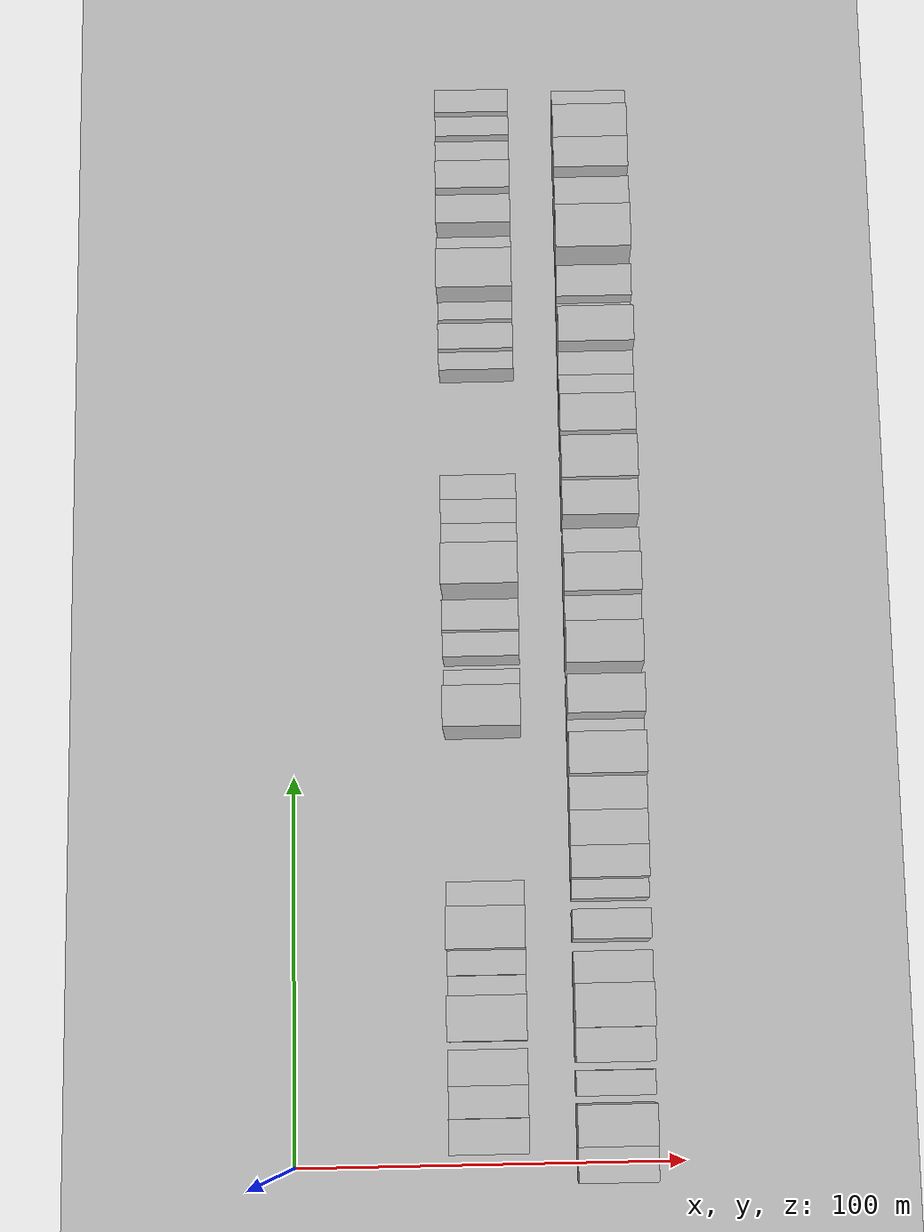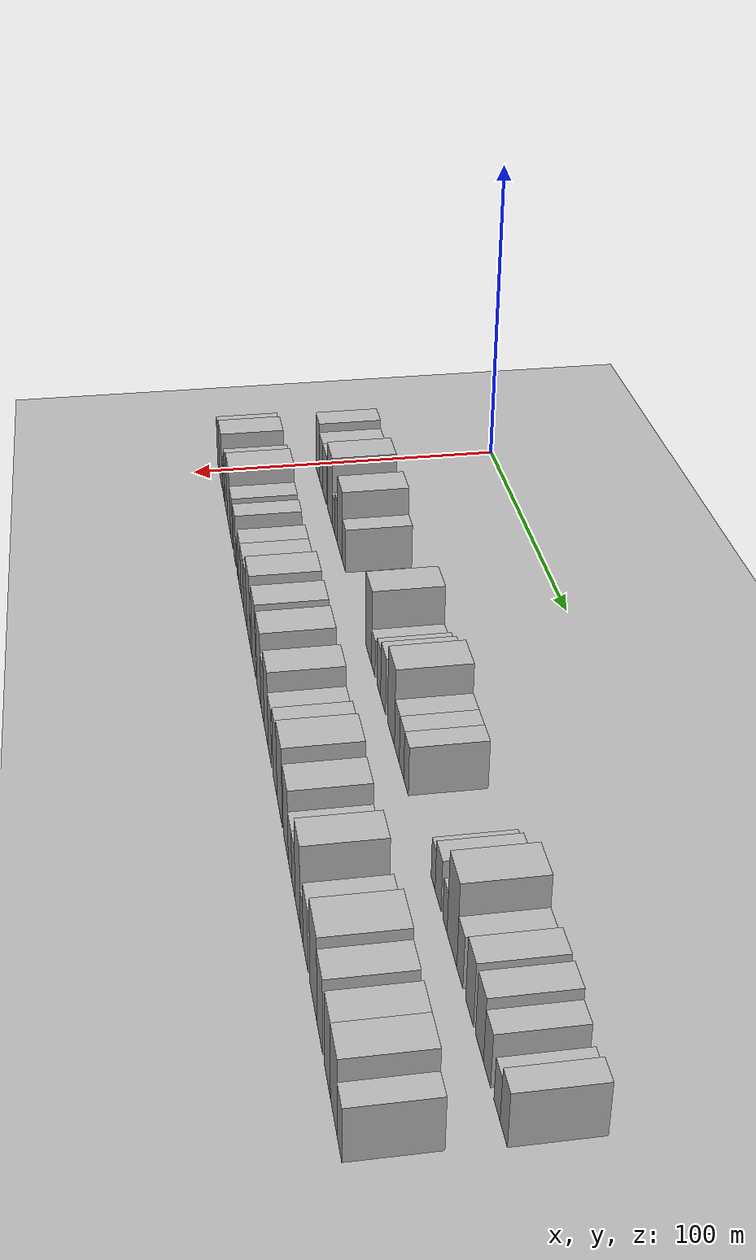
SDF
<sdf version="1.6">
 <world name="default">
  <include><name>ground_plane_1</name><uri>model://HANNAS_ground_plane</uri></include>
  <include>
   <name>ground_plane_2</name>
   <uri>model://HANNAS_ground_plane</uri>
   <pose>100 0 0  0 0 0</pose>
  </include>
  <model name="building_31">
   <static>1</static>
   <pose>50.0000 7.6886 0 0.000000 0.000000 0.000000</pose>
   <link name="link">
    <pose>0 0 10.50 0 0 0</pose>
    <collision name="collision"><geometry><box><size>20.0000 8.6175 21.0000</size></box></geometry></collision>
    <visual name="visual">
     <cast_shadows>0</cast_shadows>
     <geometry><box><size>20.0000 8.6175 21.0000</size></box></geometry>
     <material>
      <script>
       <uri>model://HANNAS_wall/materials/scripts</uri>
       <uri>model://HANNAS_wall/materials/textures</uri>
       <name>vrc/HANNAS_wall</name>
      </script>
     </material>
    </visual>
   </link>
  </model>
  <model name="building_32">
   <static>1</static>
   <pose>50.0000 15.9778 0 0.000000 0.000000 0.000000</pose>
   <link name="link">
    <pose>0 0 9.00 0 0 0</pose>
    <collision name="collision"><geometry><box><size>20.0000 7.9609 18.0000</size></box></geometry></collision>
    <visual name="visual">
     <cast_shadows>0</cast_shadows>
     <geometry><box><size>20.0000 7.9609 18.0000</size></box></geometry>
     <material>
      <script>
       <uri>model://HANNAS_wall/materials/scripts</uri>
       <uri>model://HANNAS_wall/materials/textures</uri>
       <name>vrc/HANNAS_wall</name>
      </script>
     </material>
    </visual>
   </link>
  </model>
  <model name="building_33">
   <static>1</static>
   <pose>50.0000 24.3910 0 0.000000 0.000000 0.000000</pose>
   <link name="link">
    <pose>0 0 9.00 0 0 0</pose>
    <collision name="collision"><geometry><box><size>20.0000 8.8656 18.0000</size></box></geometry></collision>
    <visual name="visual">
     <cast_shadows>0</cast_shadows>
     <geometry><box><size>20.0000 8.8656 18.0000</size></box></geometry>
     <material>
      <script>
       <uri>model://HANNAS_wall/materials/scripts</uri>
       <uri>model://HANNAS_wall/materials/textures</uri>
       <name>vrc/HANNAS_wall</name>
      </script>
     </material>
    </visual>
   </link>
  </model>
  <model name="building_34">
   <static>1</static>
   <pose>50.0000 36.4261 0 0.000000 0.000000 0.000000</pose>
   <link name="link">
    <pose>0 0 12.00 0 0 0</pose>
    <collision name="collision"><geometry><box><size>20.0000 11.2045 24.0000</size></box></geometry></collision>
    <visual name="visual">
     <cast_shadows>0</cast_shadows>
     <geometry><box><size>20.0000 11.2045 24.0000</size></box></geometry>
     <material>
      <script>
       <uri>model://HANNAS_wall/materials/scripts</uri>
       <uri>model://HANNAS_wall/materials/textures</uri>
       <name>vrc/HANNAS_wall</name>
      </script>
     </material>
    </visual>
   </link>
  </model>
  <model name="building_35">
   <static>1</static>
   <pose>50.0000 44.6338 0 0.000000 0.000000 0.000000</pose>
   <link name="link">
    <pose>0 0 6.00 0 0 0</pose>
    <collision name="collision"><geometry><box><size>20.0000 5.2108 12.0000</size></box></geometry></collision>
    <visual name="visual">
     <cast_shadows>0</cast_shadows>
     <geometry><box><size>20.0000 5.2108 12.0000</size></box></geometry>
     <material>
      <script>
       <uri>model://HANNAS_wall/materials/scripts</uri>
       <uri>model://HANNAS_wall/materials/textures</uri>
       <name>vrc/HANNAS_wall</name>
      </script>
     </material>
    </visual>
   </link>
  </model>
  <model name="building_36">
   <static>1</static>
   <pose>50.0000 50.3678 0 0.000000 0.000000 0.000000</pose>
   <link name="link">
    <pose>0 0 7.50 0 0 0</pose>
    <collision name="collision"><geometry><box><size>20.0000 6.2572 15.0000</size></box></geometry></collision>
    <visual name="visual">
     <cast_shadows>0</cast_shadows>
     <geometry><box><size>20.0000 6.2572 15.0000</size></box></geometry>
     <material>
      <script>
       <uri>model://HANNAS_wall/materials/scripts</uri>
       <uri>model://HANNAS_wall/materials/textures</uri>
       <name>vrc/HANNAS_wall</name>
      </script>
     </material>
    </visual>
   </link>
  </model>
  <model name="building_37">
   <static>1</static>
   <pose>50.0000 58.8005 0 0.000000 0.000000 0.000000</pose>
   <link name="link">
    <pose>0 0 12.00 0 0 0</pose>
    <collision name="collision"><geometry><box><size>20.0000 10.6083 24.0000</size></box></geometry></collision>
    <visual name="visual">
     <cast_shadows>0</cast_shadows>
     <geometry><box><size>20.0000 10.6083 24.0000</size></box></geometry>
     <material>
      <script>
       <uri>model://HANNAS_wall/materials/scripts</uri>
       <uri>model://HANNAS_wall/materials/textures</uri>
       <name>vrc/HANNAS_wall</name>
      </script>
     </material>
    </visual>
   </link>
  </model>
  <model name="building_38">
   <static>1</static>
   <pose>50.0000 67.4824 0 0.000000 0.000000 0.000000</pose>
   <link name="link">
    <pose>0 0 7.50 0 0 0</pose>
    <collision name="collision"><geometry><box><size>20.0000 6.7556 15.0000</size></box></geometry></collision>
    <visual name="visual">
     <cast_shadows>0</cast_shadows>
     <geometry><box><size>20.0000 6.7556 15.0000</size></box></geometry>
     <material>
      <script>
       <uri>model://HANNAS_wall/materials/scripts</uri>
       <uri>model://HANNAS_wall/materials/textures</uri>
       <name>vrc/HANNAS_wall</name>
      </script>
     </material>
    </visual>
   </link>
  </model>
  <model name="building_39">
   <static>1</static>
   <pose>50.0000 114.7980 0 0.000000 0.000000 0.000000</pose>
   <link name="link">
    <pose>0 0 12.00 0 0 0</pose>
    <collision name="collision"><geometry><box><size>20.0000 10.6252 24.0000</size></box></geometry></collision>
    <visual name="visual">
     <cast_shadows>0</cast_shadows>
     <geometry><box><size>20.0000 10.6252 24.0000</size></box></geometry>
     <material>
      <script>
       <uri>model://HANNAS_wall/materials/scripts</uri>
       <uri>model://HANNAS_wall/materials/textures</uri>
       <name>vrc/HANNAS_wall</name>
      </script>
     </material>
    </visual>
   </link>
  </model>
  <model name="building_40">
   <static>1</static>
   <pose>50.0000 123.1017 0 0.000000 0.000000 0.000000</pose>
   <link name="link">
    <pose>0 0 6.00 0 0 0</pose>
    <collision name="collision"><geometry><box><size>20.0000 5.9823 12.0000</size></box></geometry></collision>
    <visual name="visual">
     <cast_shadows>0</cast_shadows>
     <geometry><box><size>20.0000 5.9823 12.0000</size></box></geometry>
     <material>
      <script>
       <uri>model://HANNAS_wall/materials/scripts</uri>
       <uri>model://HANNAS_wall/materials/textures</uri>
       <name>vrc/HANNAS_wall</name>
      </script>
     </material>
    </visual>
   </link>
  </model>
  <model name="building_41">
   <static>1</static>
   <pose>50.0000 132.2804 0 0.000000 0.000000 0.000000</pose>
   <link name="link">
    <pose>0 0 7.50 0 0 0</pose>
    <collision name="collision"><geometry><box><size>20.0000 6.3750 15.0000</size></box></geometry></collision>
    <visual name="visual">
     <cast_shadows>0</cast_shadows>
     <geometry><box><size>20.0000 6.3750 15.0000</size></box></geometry>
     <material>
      <script>
       <uri>model://HANNAS_wall/materials/scripts</uri>
       <uri>model://HANNAS_wall/materials/textures</uri>
       <name>vrc/HANNAS_wall</name>
      </script>
     </material>
    </visual>
   </link>
  </model>
  <model name="building_42">
   <static>1</static>
   <pose>50.0000 139.5028 0 0.000000 0.000000 0.000000</pose>
   <link name="link">
    <pose>0 0 9.00 0 0 0</pose>
    <collision name="collision"><geometry><box><size>20.0000 8.0697 18.0000</size></box></geometry></collision>
    <visual name="visual">
     <cast_shadows>0</cast_shadows>
     <geometry><box><size>20.0000 8.0697 18.0000</size></box></geometry>
     <material>
      <script>
       <uri>model://HANNAS_wall/materials/scripts</uri>
       <uri>model://HANNAS_wall/materials/textures</uri>
       <name>vrc/HANNAS_wall</name>
      </script>
     </material>
    </visual>
   </link>
  </model>
  <model name="building_43">
   <static>1</static>
   <pose>50.0000 151.9790 0 0.000000 0.000000 0.000000</pose>
   <link name="link">
    <pose>0 0 12.00 0 0 0</pose>
    <collision name="collision"><geometry><box><size>20.0000 10.8826 24.0000</size></box></geometry></collision>
    <visual name="visual">
     <cast_shadows>0</cast_shadows>
     <geometry><box><size>20.0000 10.8826 24.0000</size></box></geometry>
     <material>
      <script>
       <uri>model://HANNAS_wall/materials/scripts</uri>
       <uri>model://HANNAS_wall/materials/textures</uri>
       <name>vrc/HANNAS_wall</name>
      </script>
     </material>
    </visual>
   </link>
  </model>
  <model name="building_44">
   <static>1</static>
   <pose>50.0000 161.0031 0 0.000000 0.000000 0.000000</pose>
   <link name="link">
    <pose>0 0 7.50 0 0 0</pose>
    <collision name="collision"><geometry><box><size>20.0000 7.1656 15.0000</size></box></geometry></collision>
    <visual name="visual">
     <cast_shadows>0</cast_shadows>
     <geometry><box><size>20.0000 7.1656 15.0000</size></box></geometry>
     <material>
      <script>
       <uri>model://HANNAS_wall/materials/scripts</uri>
       <uri>model://HANNAS_wall/materials/textures</uri>
       <name>vrc/HANNAS_wall</name>
      </script>
     </material>
    </visual>
   </link>
  </model>
  <model name="building_45">
   <static>1</static>
   <pose>50.0000 167.8345 0 0.000000 0.000000 0.000000</pose>
   <link name="link">
    <pose>0 0 7.50 0 0 0</pose>
    <collision name="collision"><geometry><box><size>20.0000 6.4972 15.0000</size></box></geometry></collision>
    <visual name="visual">
     <cast_shadows>0</cast_shadows>
     <geometry><box><size>20.0000 6.4972 15.0000</size></box></geometry>
     <material>
      <script>
       <uri>model://HANNAS_wall/materials/scripts</uri>
       <uri>model://HANNAS_wall/materials/textures</uri>
       <name>vrc/HANNAS_wall</name>
      </script>
     </material>
    </visual>
   </link>
  </model>
  <model name="building_46">
   <static>1</static>
   <pose>50.0000 174.4010 0 0.000000 0.000000 0.000000</pose>
   <link name="link">
    <pose>0 0 7.50 0 0 0</pose>
    <collision name="collision"><geometry><box><size>20.0000 6.6358 15.0000</size></box></geometry></collision>
    <visual name="visual">
     <cast_shadows>0</cast_shadows>
     <geometry><box><size>20.0000 6.6358 15.0000</size></box></geometry>
     <material>
      <script>
       <uri>model://HANNAS_wall/materials/scripts</uri>
       <uri>model://HANNAS_wall/materials/textures</uri>
       <name>vrc/HANNAS_wall</name>
      </script>
     </material>
    </visual>
   </link>
  </model>
  <model name="building_47">
   <static>1</static>
   <pose>50.0000 210.0900 0 0.000000 0.000000 0.000000</pose>
   <link name="link">
    <pose>0 0 6.00 0 0 0</pose>
    <collision name="collision"><geometry><box><size>20.0000 4.9141 12.0000</size></box></geometry></collision>
    <visual name="visual">
     <cast_shadows>0</cast_shadows>
     <geometry><box><size>20.0000 4.9141 12.0000</size></box></geometry>
     <material>
      <script>
       <uri>model://HANNAS_wall/materials/scripts</uri>
       <uri>model://HANNAS_wall/materials/textures</uri>
       <name>vrc/HANNAS_wall</name>
      </script>
     </material>
    </visual>
   </link>
  </model>
  <model name="building_48">
   <static>1</static>
   <pose>50.0000 216.0819 0 0.000000 0.000000 0.000000</pose>
   <link name="link">
    <pose>0 0 7.50 0 0 0</pose>
    <collision name="collision"><geometry><box><size>20.0000 7.0696 15.0000</size></box></geometry></collision>
    <visual name="visual">
     <cast_shadows>0</cast_shadows>
     <geometry><box><size>20.0000 7.0696 15.0000</size></box></geometry>
     <material>
      <script>
       <uri>model://HANNAS_wall/materials/scripts</uri>
       <uri>model://HANNAS_wall/materials/textures</uri>
       <name>vrc/HANNAS_wall</name>
      </script>
     </material>
    </visual>
   </link>
  </model>
  <model name="building_49">
   <static>1</static>
   <pose>50.0000 224.1275 0 0.000000 0.000000 0.000000</pose>
   <link name="link">
    <pose>0 0 6.00 0 0 0</pose>
    <collision name="collision"><geometry><box><size>20.0000 5.0218 12.0000</size></box></geometry></collision>
    <visual name="visual">
     <cast_shadows>0</cast_shadows>
     <geometry><box><size>20.0000 5.0218 12.0000</size></box></geometry>
     <material>
      <script>
       <uri>model://HANNAS_wall/materials/scripts</uri>
       <uri>model://HANNAS_wall/materials/textures</uri>
       <name>vrc/HANNAS_wall</name>
      </script>
     </material>
    </visual>
   </link>
  </model>
  <model name="building_50">
   <static>1</static>
   <pose>50.0000 232.0344 0 0.000000 0.000000 0.000000</pose>
   <link name="link">
    <pose>0 0 12.00 0 0 0</pose>
    <collision name="collision"><geometry><box><size>20.0000 10.7920 24.0000</size></box></geometry></collision>
    <visual name="visual">
     <cast_shadows>0</cast_shadows>
     <geometry><box><size>20.0000 10.7920 24.0000</size></box></geometry>
     <material>
      <script>
       <uri>model://HANNAS_wall/materials/scripts</uri>
       <uri>model://HANNAS_wall/materials/textures</uri>
       <name>vrc/HANNAS_wall</name>
      </script>
     </material>
    </visual>
   </link>
  </model>
  <model name="building_51">
   <static>1</static>
   <pose>50.0000 240.6646 0 0.000000 0.000000 0.000000</pose>
   <link name="link">
    <pose>0 0 7.50 0 0 0</pose>
    <collision name="collision"><geometry><box><size>20.0000 6.4684 15.0000</size></box></geometry></collision>
    <visual name="visual">
     <cast_shadows>0</cast_shadows>
     <geometry><box><size>20.0000 6.4684 15.0000</size></box></geometry>
     <material>
      <script>
       <uri>model://HANNAS_wall/materials/scripts</uri>
       <uri>model://HANNAS_wall/materials/textures</uri>
       <name>vrc/HANNAS_wall</name>
      </script>
     </material>
    </visual>
   </link>
  </model>
  <model name="building_52">
   <static>1</static>
   <pose>50.0000 250.8795 0 0.000000 0.000000 0.000000</pose>
   <link name="link">
    <pose>0 0 9.00 0 0 0</pose>
    <collision name="collision"><geometry><box><size>20.0000 7.9615 18.0000</size></box></geometry></collision>
    <visual name="visual">
     <cast_shadows>0</cast_shadows>
     <geometry><box><size>20.0000 7.9615 18.0000</size></box></geometry>
     <material>
      <script>
       <uri>model://HANNAS_wall/materials/scripts</uri>
       <uri>model://HANNAS_wall/materials/textures</uri>
       <name>vrc/HANNAS_wall</name>
      </script>
     </material>
    </visual>
   </link>
  </model>
  <model name="building_53">
   <static>1</static>
   <pose>50.0000 260.7514 0 0.000000 0.000000 0.000000</pose>
   <link name="link">
    <pose>0 0 9.00 0 0 0</pose>
    <collision name="collision"><geometry><box><size>20.0000 7.7824 18.0000</size></box></geometry></collision>
    <visual name="visual">
     <cast_shadows>0</cast_shadows>
     <geometry><box><size>20.0000 7.7824 18.0000</size></box></geometry>
     <material>
      <script>
       <uri>model://HANNAS_wall/materials/scripts</uri>
       <uri>model://HANNAS_wall/materials/textures</uri>
       <name>vrc/HANNAS_wall</name>
      </script>
     </material>
    </visual>
   </link>
  </model>
  <model name="building_54">
   <static>1</static>
   <pose>50.0000 267.9946 0 0.000000 0.000000 0.000000</pose>
   <link name="link">
    <pose>0 0 7.50 0 0 0</pose>
    <collision name="collision"><geometry><box><size>20.0000 6.7040 15.0000</size></box></geometry></collision>
    <visual name="visual">
     <cast_shadows>0</cast_shadows>
     <geometry><box><size>20.0000 6.7040 15.0000</size></box></geometry>
     <material>
      <script>
       <uri>model://HANNAS_wall/materials/scripts</uri>
       <uri>model://HANNAS_wall/materials/textures</uri>
       <name>vrc/HANNAS_wall</name>
      </script>
     </material>
    </visual>
   </link>
  </model>
  <model name="building_55">
   <static>1</static>
   <pose>50.0000 277.1277 0 0.000000 0.000000 0.000000</pose>
   <link name="link">
    <pose>0 0 6.00 0 0 0</pose>
    <collision name="collision"><geometry><box><size>20.0000 5.5620 12.0000</size></box></geometry></collision>
    <visual name="visual">
     <cast_shadows>0</cast_shadows>
     <geometry><box><size>20.0000 5.5620 12.0000</size></box></geometry>
     <material>
      <script>
       <uri>model://HANNAS_wall/materials/scripts</uri>
       <uri>model://HANNAS_wall/materials/textures</uri>
       <name>vrc/HANNAS_wall</name>
      </script>
     </material>
    </visual>
   </link>
  </model>
  <model name="building_56">
   <static>1</static>
   <pose>50.0000 283.1235 0 0.000000 0.000000 0.000000</pose>
   <link name="link">
    <pose>0 0 7.50 0 0 0</pose>
    <collision name="collision"><geometry><box><size>20.0000 6.4297 15.0000</size></box></geometry></collision>
    <visual name="visual">
     <cast_shadows>0</cast_shadows>
     <geometry><box><size>20.0000 6.4297 15.0000</size></box></geometry>
     <material>
      <script>
       <uri>model://HANNAS_wall/materials/scripts</uri>
       <uri>model://HANNAS_wall/materials/textures</uri>
       <name>vrc/HANNAS_wall</name>
      </script>
     </material>
    </visual>
   </link>
  </model>
  <model name="building_85">
   <static>1</static>
   <pose>82.0000 0.1891 0 0.000000 0.000000 0.000000</pose>
   <link name="link">
    <pose>0 0 9.00 0 0 0</pose>
    <collision name="collision"><geometry><box><size>20.0000 8.8460 18.0000</size></box></geometry></collision>
    <visual name="visual">
     <cast_shadows>0</cast_shadows>
     <geometry><box><size>20.0000 8.8460 18.0000</size></box></geometry>
     <material>
      <script>
       <uri>model://HANNAS_wall/materials/scripts</uri>
       <uri>model://HANNAS_wall/materials/textures</uri>
       <name>vrc/HANNAS_wall</name>
      </script>
     </material>
    </visual>
   </link>
  </model>
  <model name="building_86">
   <static>1</static>
   <pose>82.0000 9.7222 0 0.000000 0.000000 0.000000</pose>
   <link name="link">
    <pose>0 0 10.50 0 0 0</pose>
    <collision name="collision"><geometry><box><size>20.0000 10.2203 21.0000</size></box></geometry></collision>
    <visual name="visual">
     <cast_shadows>0</cast_shadows>
     <geometry><box><size>20.0000 10.2203 21.0000</size></box></geometry>
     <material>
      <script>
       <uri>model://HANNAS_wall/materials/scripts</uri>
       <uri>model://HANNAS_wall/materials/textures</uri>
       <name>vrc/HANNAS_wall</name>
      </script>
     </material>
    </visual>
   </link>
  </model>
  <model name="building_87">
   <static>1</static>
   <pose>82.0000 19.9514 0 0.000000 0.000000 0.000000</pose>
   <link name="link">
    <pose>0 0 7.50 0 0 0</pose>
    <collision name="collision"><geometry><box><size>20.0000 6.2381 15.0000</size></box></geometry></collision>
    <visual name="visual">
     <cast_shadows>0</cast_shadows>
     <geometry><box><size>20.0000 6.2381 15.0000</size></box></geometry>
     <material>
      <script>
       <uri>model://HANNAS_wall/materials/scripts</uri>
       <uri>model://HANNAS_wall/materials/textures</uri>
       <name>vrc/HANNAS_wall</name>
      </script>
     </material>
    </visual>
   </link>
  </model>
  <model name="building_88">
   <static>1</static>
   <pose>82.0000 29.3244 0 0.000000 0.000000 0.000000</pose>
   <link name="link">
    <pose>0 0 10.50 0 0 0</pose>
    <collision name="collision"><geometry><box><size>20.0000 8.5079 21.0000</size></box></geometry></collision>
    <visual name="visual">
     <cast_shadows>0</cast_shadows>
     <geometry><box><size>20.0000 8.5079 21.0000</size></box></geometry>
     <material>
      <script>
       <uri>model://HANNAS_wall/materials/scripts</uri>
       <uri>model://HANNAS_wall/materials/textures</uri>
       <name>vrc/HANNAS_wall</name>
      </script>
     </material>
    </visual>
   </link>
  </model>
  <model name="building_89">
   <static>1</static>
   <pose>82.0000 39.0134 0 0.000000 0.000000 0.000000</pose>
   <link name="link">
    <pose>0 0 12.00 0 0 0</pose>
    <collision name="collision"><geometry><box><size>20.0000 10.8700 24.0000</size></box></geometry></collision>
    <visual name="visual">
     <cast_shadows>0</cast_shadows>
     <geometry><box><size>20.0000 10.8700 24.0000</size></box></geometry>
     <material>
      <script>
       <uri>model://HANNAS_wall/materials/scripts</uri>
       <uri>model://HANNAS_wall/materials/textures</uri>
       <name>vrc/HANNAS_wall</name>
      </script>
     </material>
    </visual>
   </link>
  </model>
  <model name="building_90">
   <static>1</static>
   <pose>82.0000 48.5126 0 0.000000 0.000000 0.000000</pose>
   <link name="link">
    <pose>0 0 9.00 0 0 0</pose>
    <collision name="collision"><geometry><box><size>20.0000 8.1285 18.0000</size></box></geometry></collision>
    <visual name="visual">
     <cast_shadows>0</cast_shadows>
     <geometry><box><size>20.0000 8.1285 18.0000</size></box></geometry>
     <material>
      <script>
       <uri>model://HANNAS_wall/materials/scripts</uri>
       <uri>model://HANNAS_wall/materials/textures</uri>
       <name>vrc/HANNAS_wall</name>
      </script>
     </material>
    </visual>
   </link>
  </model>
  <model name="building_91">
   <static>1</static>
   <pose>82.0000 59.3469 0 0.000000 0.000000 0.000000</pose>
   <link name="link">
    <pose>0 0 9.00 0 0 0</pose>
    <collision name="collision"><geometry><box><size>20.0000 7.5400 18.0000</size></box></geometry></collision>
    <visual name="visual">
     <cast_shadows>0</cast_shadows>
     <geometry><box><size>20.0000 7.5400 18.0000</size></box></geometry>
     <material>
      <script>
       <uri>model://HANNAS_wall/materials/scripts</uri>
       <uri>model://HANNAS_wall/materials/textures</uri>
       <name>vrc/HANNAS_wall</name>
      </script>
     </material>
    </visual>
   </link>
  </model>
  <model name="building_92">
   <static>1</static>
   <pose>82.0000 68.5817 0 0.000000 0.000000 0.000000</pose>
   <link name="link">
    <pose>0 0 6.00 0 0 0</pose>
    <collision name="collision"><geometry><box><size>20.0000 4.9296 12.0000</size></box></geometry></collision>
    <visual name="visual">
     <cast_shadows>0</cast_shadows>
     <geometry><box><size>20.0000 4.9296 12.0000</size></box></geometry>
     <material>
      <script>
       <uri>model://HANNAS_wall/materials/scripts</uri>
       <uri>model://HANNAS_wall/materials/textures</uri>
       <name>vrc/HANNAS_wall</name>
      </script>
     </material>
    </visual>
   </link>
  </model>
  <model name="building_93">
   <static>1</static>
   <pose>82.0000 75.1342 0 0.000000 0.000000 0.000000</pose>
   <link name="link">
    <pose>0 0 9.00 0 0 0</pose>
    <collision name="collision"><geometry><box><size>20.0000 8.1755 18.0000</size></box></geometry></collision>
    <visual name="visual">
     <cast_shadows>0</cast_shadows>
     <geometry><box><size>20.0000 8.1755 18.0000</size></box></geometry>
     <material>
      <script>
       <uri>model://HANNAS_wall/materials/scripts</uri>
       <uri>model://HANNAS_wall/materials/textures</uri>
       <name>vrc/HANNAS_wall</name>
      </script>
     </material>
    </visual>
   </link>
  </model>
  <model name="building_94">
   <static>1</static>
   <pose>82.0000 83.7065 0 0.000000 0.000000 0.000000</pose>
   <link name="link">
    <pose>0 0 9.00 0 0 0</pose>
    <collision name="collision"><geometry><box><size>20.0000 8.9689 18.0000</size></box></geometry></collision>
    <visual name="visual">
     <cast_shadows>0</cast_shadows>
     <geometry><box><size>20.0000 8.9689 18.0000</size></box></geometry>
     <material>
      <script>
       <uri>model://HANNAS_wall/materials/scripts</uri>
       <uri>model://HANNAS_wall/materials/textures</uri>
       <name>vrc/HANNAS_wall</name>
      </script>
     </material>
    </visual>
   </link>
  </model>
  <model name="building_95">
   <static>1</static>
   <pose>82.0000 92.5119 0 0.000000 0.000000 0.000000</pose>
   <link name="link">
    <pose>0 0 9.00 0 0 0</pose>
    <collision name="collision"><geometry><box><size>20.0000 8.6419 18.0000</size></box></geometry></collision>
    <visual name="visual">
     <cast_shadows>0</cast_shadows>
     <geometry><box><size>20.0000 8.6419 18.0000</size></box></geometry>
     <material>
      <script>
       <uri>model://HANNAS_wall/materials/scripts</uri>
       <uri>model://HANNAS_wall/materials/textures</uri>
       <name>vrc/HANNAS_wall</name>
      </script>
     </material>
    </visual>
   </link>
  </model>
  <model name="building_96">
   <static>1</static>
   <pose>82.0000 102.1869 0 0.000000 0.000000 0.000000</pose>
   <link name="link">
    <pose>0 0 12.00 0 0 0</pose>
    <collision name="collision"><geometry><box><size>20.0000 10.7083 24.0000</size></box></geometry></collision>
    <visual name="visual">
     <cast_shadows>0</cast_shadows>
     <geometry><box><size>20.0000 10.7083 24.0000</size></box></geometry>
     <material>
      <script>
       <uri>model://HANNAS_wall/materials/scripts</uri>
       <uri>model://HANNAS_wall/materials/textures</uri>
       <name>vrc/HANNAS_wall</name>
      </script>
     </material>
    </visual>
   </link>
  </model>
  <model name="building_97">
   <static>1</static>
   <pose>82.0000 109.9484 0 0.000000 0.000000 0.000000</pose>
   <link name="link">
    <pose>0 0 6.00 0 0 0</pose>
    <collision name="collision"><geometry><box><size>20.0000 4.8147 12.0000</size></box></geometry></collision>
    <visual name="visual">
     <cast_shadows>0</cast_shadows>
     <geometry><box><size>20.0000 4.8147 12.0000</size></box></geometry>
     <material>
      <script>
       <uri>model://HANNAS_wall/materials/scripts</uri>
       <uri>model://HANNAS_wall/materials/textures</uri>
       <name>vrc/HANNAS_wall</name>
      </script>
     </material>
    </visual>
   </link>
  </model>
  <model name="building_98">
   <static>1</static>
   <pose>82.0000 117.3427 0 0.000000 0.000000 0.000000</pose>
   <link name="link">
    <pose>0 0 12.00 0 0 0</pose>
    <collision name="collision"><geometry><box><size>20.0000 9.9739 24.0000</size></box></geometry></collision>
    <visual name="visual">
     <cast_shadows>0</cast_shadows>
     <geometry><box><size>20.0000 9.9739 24.0000</size></box></geometry>
     <material>
      <script>
       <uri>model://HANNAS_wall/materials/scripts</uri>
       <uri>model://HANNAS_wall/materials/textures</uri>
       <name>vrc/HANNAS_wall</name>
      </script>
     </material>
    </visual>
   </link>
  </model>
  <model name="building_99">
   <static>1</static>
   <pose>82.0000 130.7775 0 0.000000 0.000000 0.000000</pose>
   <link name="link">
    <pose>0 0 12.00 0 0 0</pose>
    <collision name="collision"><geometry><box><size>20.0000 10.8957 24.0000</size></box></geometry></collision>
    <visual name="visual">
     <cast_shadows>0</cast_shadows>
     <geometry><box><size>20.0000 10.8957 24.0000</size></box></geometry>
     <material>
      <script>
       <uri>model://HANNAS_wall/materials/scripts</uri>
       <uri>model://HANNAS_wall/materials/textures</uri>
       <name>vrc/HANNAS_wall</name>
      </script>
     </material>
    </visual>
   </link>
  </model>
  <model name="building_100">
   <static>1</static>
   <pose>82.0000 140.1203 0 0.000000 0.000000 0.000000</pose>
   <link name="link">
    <pose>0 0 9.00 0 0 0</pose>
    <collision name="collision"><geometry><box><size>20.0000 7.7899 18.0000</size></box></geometry></collision>
    <visual name="visual">
     <cast_shadows>0</cast_shadows>
     <geometry><box><size>20.0000 7.7899 18.0000</size></box></geometry>
     <material>
      <script>
       <uri>model://HANNAS_wall/materials/scripts</uri>
       <uri>model://HANNAS_wall/materials/textures</uri>
       <name>vrc/HANNAS_wall</name>
      </script>
     </material>
    </visual>
   </link>
  </model>
  <model name="building_101">
   <static>1</static>
   <pose>82.0000 149.0591 0 0.000000 0.000000 0.000000</pose>
   <link name="link">
    <pose>0 0 12.00 0 0 0</pose>
    <collision name="collision"><geometry><box><size>20.0000 10.0878 24.0000</size></box></geometry></collision>
    <visual name="visual">
     <cast_shadows>0</cast_shadows>
     <geometry><box><size>20.0000 10.0878 24.0000</size></box></geometry>
     <material>
      <script>
       <uri>model://HANNAS_wall/materials/scripts</uri>
       <uri>model://HANNAS_wall/materials/textures</uri>
       <name>vrc/HANNAS_wall</name>
      </script>
     </material>
    </visual>
   </link>
  </model>
  <model name="building_102">
   <static>1</static>
   <pose>82.0000 157.9821 0 0.000000 0.000000 0.000000</pose>
   <link name="link">
    <pose>0 0 9.00 0 0 0</pose>
    <collision name="collision"><geometry><box><size>20.0000 7.7582 18.0000</size></box></geometry></collision>
    <visual name="visual">
     <cast_shadows>0</cast_shadows>
     <geometry><box><size>20.0000 7.7582 18.0000</size></box></geometry>
     <material>
      <script>
       <uri>model://HANNAS_wall/materials/scripts</uri>
       <uri>model://HANNAS_wall/materials/textures</uri>
       <name>vrc/HANNAS_wall</name>
      </script>
     </material>
    </visual>
   </link>
  </model>
  <model name="building_103">
   <static>1</static>
   <pose>82.0000 169.5404 0 0.000000 0.000000 0.000000</pose>
   <link name="link">
    <pose>0 0 10.50 0 0 0</pose>
    <collision name="collision"><geometry><box><size>20.0000 9.3583 21.0000</size></box></geometry></collision>
    <visual name="visual">
     <cast_shadows>0</cast_shadows>
     <geometry><box><size>20.0000 9.3583 21.0000</size></box></geometry>
     <material>
      <script>
       <uri>model://HANNAS_wall/materials/scripts</uri>
       <uri>model://HANNAS_wall/materials/textures</uri>
       <name>vrc/HANNAS_wall</name>
      </script>
     </material>
    </visual>
   </link>
  </model>
  <model name="building_104">
   <static>1</static>
   <pose>82.0000 179.8661 0 0.000000 0.000000 0.000000</pose>
   <link name="link">
    <pose>0 0 12.00 0 0 0</pose>
    <collision name="collision"><geometry><box><size>20.0000 11.2931 24.0000</size></box></geometry></collision>
    <visual name="visual">
     <cast_shadows>0</cast_shadows>
     <geometry><box><size>20.0000 11.2931 24.0000</size></box></geometry>
     <material>
      <script>
       <uri>model://HANNAS_wall/materials/scripts</uri>
       <uri>model://HANNAS_wall/materials/textures</uri>
       <name>vrc/HANNAS_wall</name>
      </script>
     </material>
    </visual>
   </link>
  </model>
  <model name="building_105">
   <static>1</static>
   <pose>82.0000 192.5961 0 0.000000 0.000000 0.000000</pose>
   <link name="link">
    <pose>0 0 10.50 0 0 0</pose>
    <collision name="collision"><geometry><box><size>20.0000 10.1670 21.0000</size></box></geometry></collision>
    <visual name="visual">
     <cast_shadows>0</cast_shadows>
     <geometry><box><size>20.0000 10.1670 21.0000</size></box></geometry>
     <material>
      <script>
       <uri>model://HANNAS_wall/materials/scripts</uri>
       <uri>model://HANNAS_wall/materials/textures</uri>
       <name>vrc/HANNAS_wall</name>
      </script>
     </material>
    </visual>
   </link>
  </model>
  <model name="building_106">
   <static>1</static>
   <pose>82.0000 201.1451 0 0.000000 0.000000 0.000000</pose>
   <link name="link">
    <pose>0 0 7.50 0 0 0</pose>
    <collision name="collision"><geometry><box><size>20.0000 6.9309 15.0000</size></box></geometry></collision>
    <visual name="visual">
     <cast_shadows>0</cast_shadows>
     <geometry><box><size>20.0000 6.9309 15.0000</size></box></geometry>
     <material>
      <script>
       <uri>model://HANNAS_wall/materials/scripts</uri>
       <uri>model://HANNAS_wall/materials/textures</uri>
       <name>vrc/HANNAS_wall</name>
      </script>
     </material>
    </visual>
   </link>
  </model>
  <model name="building_107">
   <static>1</static>
   <pose>82.0000 207.8494 0 0.000000 0.000000 0.000000</pose>
   <link name="link">
    <pose>0 0 7.50 0 0 0</pose>
    <collision name="collision"><geometry><box><size>20.0000 6.4778 15.0000</size></box></geometry></collision>
    <visual name="visual">
     <cast_shadows>0</cast_shadows>
     <geometry><box><size>20.0000 6.4778 15.0000</size></box></geometry>
     <material>
      <script>
       <uri>model://HANNAS_wall/materials/scripts</uri>
       <uri>model://HANNAS_wall/materials/textures</uri>
       <name>vrc/HANNAS_wall</name>
      </script>
     </material>
    </visual>
   </link>
  </model>
  <model name="building_108">
   <static>1</static>
   <pose>82.0000 215.9376 0 0.000000 0.000000 0.000000</pose>
   <link name="link">
    <pose>0 0 12.00 0 0 0</pose>
    <collision name="collision"><geometry><box><size>20.0000 9.6987 24.0000</size></box></geometry></collision>
    <visual name="visual">
     <cast_shadows>0</cast_shadows>
     <geometry><box><size>20.0000 9.6987 24.0000</size></box></geometry>
     <material>
      <script>
       <uri>model://HANNAS_wall/materials/scripts</uri>
       <uri>model://HANNAS_wall/materials/textures</uri>
       <name>vrc/HANNAS_wall</name>
      </script>
     </material>
    </visual>
   </link>
  </model>
  <model name="building_109">
   <static>1</static>
   <pose>82.0000 223.1934 0 0.000000 0.000000 0.000000</pose>
   <link name="link">
    <pose>0 0 6.00 0 0 0</pose>
    <collision name="collision"><geometry><box><size>20.0000 4.8129 12.0000</size></box></geometry></collision>
    <visual name="visual">
     <cast_shadows>0</cast_shadows>
     <geometry><box><size>20.0000 4.8129 12.0000</size></box></geometry>
     <material>
      <script>
       <uri>model://HANNAS_wall/materials/scripts</uri>
       <uri>model://HANNAS_wall/materials/textures</uri>
       <name>vrc/HANNAS_wall</name>
      </script>
     </material>
    </visual>
   </link>
  </model>
  <model name="building_110">
   <static>1</static>
   <pose>82.0000 229.9329 0 0.000000 0.000000 0.000000</pose>
   <link name="link">
    <pose>0 0 9.00 0 0 0</pose>
    <collision name="collision"><geometry><box><size>20.0000 8.6661 18.0000</size></box></geometry></collision>
    <visual name="visual">
     <cast_shadows>0</cast_shadows>
     <geometry><box><size>20.0000 8.6661 18.0000</size></box></geometry>
     <material>
      <script>
       <uri>model://HANNAS_wall/materials/scripts</uri>
       <uri>model://HANNAS_wall/materials/textures</uri>
       <name>vrc/HANNAS_wall</name>
      </script>
     </material>
    </visual>
   </link>
  </model>
  <model name="building_111">
   <static>1</static>
   <pose>82.0000 243.2452 0 0.000000 0.000000 0.000000</pose>
   <link name="link">
    <pose>0 0 12.00 0 0 0</pose>
    <collision name="collision"><geometry><box><size>20.0000 11.9585 24.0000</size></box></geometry></collision>
    <visual name="visual">
     <cast_shadows>0</cast_shadows>
     <geometry><box><size>20.0000 11.9585 24.0000</size></box></geometry>
     <material>
      <script>
       <uri>model://HANNAS_wall/materials/scripts</uri>
       <uri>model://HANNAS_wall/materials/textures</uri>
       <name>vrc/HANNAS_wall</name>
      </script>
     </material>
    </visual>
   </link>
  </model>
  <model name="building_112">
   <static>1</static>
   <pose>82.0000 253.6163 0 0.000000 0.000000 0.000000</pose>
   <link name="link">
    <pose>0 0 10.50 0 0 0</pose>
    <collision name="collision"><geometry><box><size>20.0000 8.7838 21.0000</size></box></geometry></collision>
    <visual name="visual">
     <cast_shadows>0</cast_shadows>
     <geometry><box><size>20.0000 8.7838 21.0000</size></box></geometry>
     <material>
      <script>
       <uri>model://HANNAS_wall/materials/scripts</uri>
       <uri>model://HANNAS_wall/materials/textures</uri>
       <name>vrc/HANNAS_wall</name>
      </script>
     </material>
    </visual>
   </link>
  </model>
  <model name="building_113">
   <static>1</static>
   <pose>82.0000 265.2786 0 0.000000 0.000000 0.000000</pose>
   <link name="link">
    <pose>0 0 10.50 0 0 0</pose>
    <collision name="collision"><geometry><box><size>20.0000 8.5408 21.0000</size></box></geometry></collision>
    <visual name="visual">
     <cast_shadows>0</cast_shadows>
     <geometry><box><size>20.0000 8.5408 21.0000</size></box></geometry>
     <material>
      <script>
       <uri>model://HANNAS_wall/materials/scripts</uri>
       <uri>model://HANNAS_wall/materials/textures</uri>
       <name>vrc/HANNAS_wall</name>
      </script>
     </material>
    </visual>
   </link>
  </model>
  <model name="building_114">
   <static>1</static>
   <pose>82.0000 274.2559 0 0.000000 0.000000 0.000000</pose>
   <link name="link">
    <pose>0 0 10.50 0 0 0</pose>
    <collision name="collision"><geometry><box><size>20.0000 9.4137 21.0000</size></box></geometry></collision>
    <visual name="visual">
     <cast_shadows>0</cast_shadows>
     <geometry><box><size>20.0000 9.4137 21.0000</size></box></geometry>
     <material>
      <script>
       <uri>model://HANNAS_wall/materials/scripts</uri>
       <uri>model://HANNAS_wall/materials/textures</uri>
       <name>vrc/HANNAS_wall</name>
      </script>
     </material>
    </visual>
   </link>
  </model>
  <model name="building_115">
   <static>1</static>
   <pose>82.0000 282.1723 0 0.000000 0.000000 0.000000</pose>
   <link name="link">
    <pose>0 0 7.50 0 0 0</pose>
    <collision name="collision"><geometry><box><size>20.0000 6.4193 15.0000</size></box></geometry></collision>
    <visual name="visual">
     <cast_shadows>0</cast_shadows>
     <geometry><box><size>20.0000 6.4193 15.0000</size></box></geometry>
     <material>
      <script>
       <uri>model://HANNAS_wall/materials/scripts</uri>
       <uri>model://HANNAS_wall/materials/textures</uri>
       <name>vrc/HANNAS_wall</name>
      </script>
     </material>
    </visual>
   </link>
  </model>
 </world>
</sdf>
